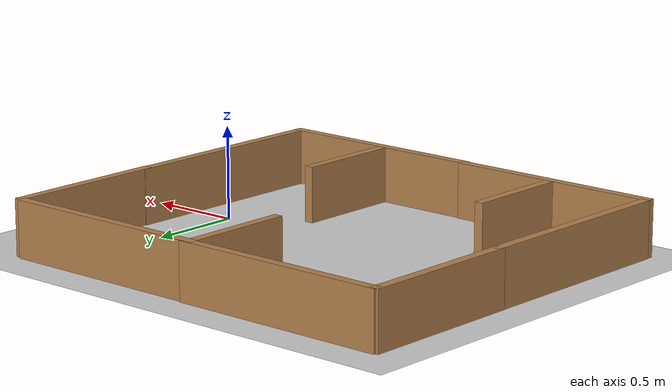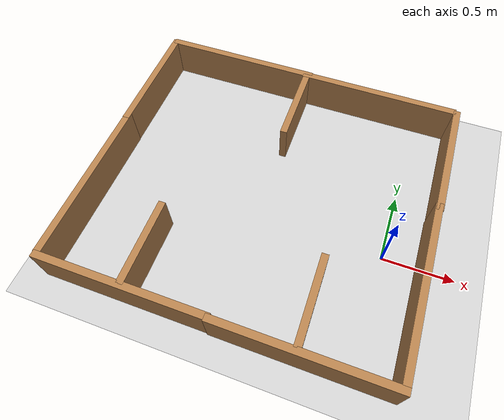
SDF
<sdf version="1.7">
 <world name="default">
  <light name="sun" type="directional">
   <pose>0 0 10 0 -0 0</pose>
   <diffuse>0.8 0.8 0.8 1</diffuse>
   <specular>0.2 0.2 0.2 1</specular>
   <attenuation>
    <range>1000</range>
    <constant>0.9</constant>
    <linear>0.01</linear>
    <quadratic>0.001</quadratic>
   </attenuation>
   <direction>-0.5 0.1 -0.9</direction>
   <spot><inner_angle>0</inner_angle><outer_angle>0</outer_angle><falloff>0</falloff></spot>
  </light>
  <model name="ground_plane">
   <static>1</static>
   <link name="link">
    <collision name="collision">
     <geometry><plane><normal>0 0 1</normal><size>100 100</size></plane></geometry>
     <surface>
      <contact><collide_bitmask>65535</collide_bitmask></contact>
      <friction><ode><mu>100</mu><mu2>50</mu2></ode></friction>
     </surface>
    </collision>
    <visual name="visual">
     <cast_shadows>0</cast_shadows>
     <geometry><plane><normal>0 0 1</normal><size>100 100</size></plane></geometry>
     <material>
      <script><uri>file://media/materials/scripts/gazebo.material</uri><name>Gazebo/Grey</name></script>
     </material>
    </visual>
   </link>
  </model>
  <gravity>0 0 -9.8</gravity>
  <magnetic_field>6e-06 2.3e-05 -4.2e-05</magnetic_field>
  <atmosphere type="adiabatic"/>
  <physics type="ode">
   <max_step_size>0.001</max_step_size>
   <real_time_factor>1</real_time_factor>
   <real_time_update_rate>1000</real_time_update_rate>
  </physics>
  <scene><ambient>0.4 0.4 0.4 1</ambient><background>0.7 0.7 0.7 1</background><shadows>1</shadows></scene>
  <spherical_coordinates>
   <surface_model>EARTH_WGS84</surface_model>
   <latitude_deg>0</latitude_deg>
   <longitude_deg>0</longitude_deg>
   <elevation>0</elevation>
   <heading_deg>0</heading_deg>
  </spherical_coordinates>
  <model name="demo_world">
   <model name="wall120cm">
    <pose>0.593911 -0.999291 0 0 -0 0</pose>
    <link name="Wall_11">
     <collision name="Wall_11_Collision">
      <geometry><box><size>1.2 0.05 0.3</size></box></geometry>
      <pose>0 0 0.15 0 -0 0</pose>
     </collision>
     <visual name="Wall_11_Visual">
      <pose>0 0 0.15 0 -0 0</pose>
      <geometry><box><size>1.2 0.05 0.3</size></box></geometry>
      <material>
       <script><uri>file://media/materials/scripts/gazebo.material</uri><name>Gazebo/Wood</name></script>
       <ambient>1 1 1 1</ambient>
      </material>
      <meta><layer>0</layer></meta>
     </visual>
    </link>
    <static>1</static>
   </model>
   <model name="wall120cm_0">
    <pose>-0.575644 -0.992298 0 0 -0 0</pose>
    <link name="Wall_11">
     <collision name="Wall_11_Collision">
      <geometry><box><size>1.2 0.05 0.3</size></box></geometry>
      <pose>0 0 0.15 0 -0 0</pose>
     </collision>
     <visual name="Wall_11_Visual">
      <pose>0 0 0.15 0 -0 0</pose>
      <geometry><box><size>1.2 0.05 0.3</size></box></geometry>
      <material>
       <script><uri>file://media/materials/scripts/gazebo.material</uri><name>Gazebo/Wood</name></script>
       <ambient>1 1 1 1</ambient>
      </material>
      <meta><layer>0</layer></meta>
     </visual>
    </link>
    <static>1</static>
   </model>
   <model name="wall120cm_1">
    <pose>0.55815 1.05823 0 0 -0 0</pose>
    <link name="Wall_11">
     <collision name="Wall_11_Collision">
      <geometry><box><size>1.2 0.05 0.3</size></box></geometry>
      <pose>0 0 0.15 0 -0 0</pose>
     </collision>
     <visual name="Wall_11_Visual">
      <pose>0 0 0.15 0 -0 0</pose>
      <geometry><box><size>1.2 0.05 0.3</size></box></geometry>
      <material>
       <script><uri>file://media/materials/scripts/gazebo.material</uri><name>Gazebo/Wood</name></script>
       <ambient>1 1 1 1</ambient>
      </material>
      <meta><layer>0</layer></meta>
     </visual>
    </link>
    <static>1</static>
   </model>
   <model name="wall120cm_2">
    <pose>-0.572781 1.06556 0 0 -0 0</pose>
    <link name="Wall_11">
     <collision name="Wall_11_Collision">
      <geometry><box><size>1.2 0.05 0.3</size></box></geometry>
      <pose>0 0 0.15 0 -0 0</pose>
     </collision>
     <visual name="Wall_11_Visual">
      <pose>0 0 0.15 0 -0 0</pose>
      <geometry><box><size>1.2 0.05 0.3</size></box></geometry>
      <material>
       <script><uri>file://media/materials/scripts/gazebo.material</uri><name>Gazebo/Wood</name></script>
       <ambient>1 1 1 1</ambient>
      </material>
      <meta><layer>0</layer></meta>
     </visual>
    </link>
    <static>1</static>
   </model>
   <model name="wall120cm_3">
    <pose>-1.15465 -0.379228 0 0 0 -1.5696</pose>
    <link name="Wall_11">
     <collision name="Wall_11_Collision">
      <geometry><box><size>1.2 0.05 0.3</size></box></geometry>
      <pose>0 0 0.15 0 -0 0</pose>
     </collision>
     <visual name="Wall_11_Visual">
      <pose>0 0 0.15 0 -0 0</pose>
      <geometry><box><size>1.2 0.05 0.3</size></box></geometry>
      <material>
       <script><uri>file://media/materials/scripts/gazebo.material</uri><name>Gazebo/Wood</name></script>
       <ambient>1 1 1 1</ambient>
      </material>
      <meta><layer>0</layer></meta>
     </visual>
    </link>
    <static>1</static>
   </model>
   <model name="wall120cm_4">
    <pose>1.16731 -0.376401 0 0 0 -1.56859</pose>
    <link name="Wall_11">
     <collision name="Wall_11_Collision">
      <geometry><box><size>1.2 0.05 0.3</size></box></geometry>
      <pose>0 0 0.15 0 -0 0</pose>
     </collision>
     <visual name="Wall_11_Visual">
      <pose>0 0 0.15 0 -0 0</pose>
      <geometry><box><size>1.2 0.05 0.3</size></box></geometry>
      <material>
       <script><uri>file://media/materials/scripts/gazebo.material</uri><name>Gazebo/Wood</name></script>
       <ambient>1 1 1 1</ambient>
      </material>
      <meta><layer>0</layer></meta>
     </visual>
    </link>
    <static>1</static>
   </model>
   <model name="wall60cm_1">
    <pose>-0.570037 -0.688227 0 0 0 -1.56024</pose>
    <link name="Wall_4">
     <collision name="Wall_4_Collision">
      <geometry><box><size>0.6 0.05 0.3</size></box></geometry>
      <pose>0 0 0.15 0 -0 0</pose>
     </collision>
     <visual name="Wall_4_Visual">
      <pose>0 0 0.15 0 -0 0</pose>
      <geometry><box><size>0.6 0.05 0.3</size></box></geometry>
      <material>
       <script><uri>file://media/materials/scripts/gazebo.material</uri><name>Gazebo/Wood</name></script>
       <ambient>1 1 1 1</ambient>
      </material>
      <meta><layer>0</layer></meta>
     </visual>
    </link>
    <static>1</static>
   </model>
   <model name="wall60cm_1_clone">
    <pose>0.552915 -0.683128 0 0 0 -1.56024</pose>
    <link name="Wall_4">
     <collision name="Wall_4_Collision">
      <geometry><box><size>0.6 0.05 0.3</size></box></geometry>
      <pose>0 0 0.15 0 -0 0</pose>
     </collision>
     <visual name="Wall_4_Visual">
      <pose>0 0 0.15 0 -0 0</pose>
      <geometry><box><size>0.6 0.05 0.3</size></box></geometry>
      <material>
       <script><uri>file://media/materials/scripts/gazebo.material</uri><name>Gazebo/Wood</name></script>
       <ambient>1 1 1 1</ambient>
      </material>
      <meta><layer>0</layer></meta>
     </visual>
    </link>
    <static>1</static>
   </model>
   <model name="wall60cm_1_clone_0">
    <pose>-0.008217 0.744159 0 0 0 -1.56024</pose>
    <link name="Wall_4">
     <collision name="Wall_4_Collision">
      <geometry><box><size>0.6 0.05 0.3</size></box></geometry>
      <pose>0 0 0.15 0 -0 0</pose>
     </collision>
     <visual name="Wall_4_Visual">
      <pose>0 0 0.15 0 -0 0</pose>
      <geometry><box><size>0.6 0.05 0.3</size></box></geometry>
      <material>
       <script><uri>file://media/materials/scripts/gazebo.material</uri><name>Gazebo/Wood</name></script>
       <ambient>1 1 1 1</ambient>
      </material>
      <meta><layer>0</layer></meta>
     </visual>
    </link>
    <static>1</static>
   </model>
   <model name="wall90cm">
    <pose>1.169 0.620401 0 0 -0 1.57705</pose>
    <link name="Wall_6">
     <collision name="Wall_6_Collision">
      <geometry><box><size>0.9 0.05 0.3</size></box></geometry>
      <pose>0 0 0.15 0 -0 0</pose>
     </collision>
     <visual name="Wall_6_Visual">
      <pose>0 0 0.15 0 -0 0</pose>
      <geometry><box><size>0.9 0.05 0.3</size></box></geometry>
      <material>
       <script><uri>file://media/materials/scripts/gazebo.material</uri><name>Gazebo/Wood</name></script>
       <ambient>1 1 1 1</ambient>
      </material>
      <meta><layer>0</layer></meta>
     </visual>
    </link>
    <static>1</static>
   </model>
   <model name="wall90cm_0">
    <pose>-1.15996 0.630219 0 0 0 -1.5662</pose>
    <link name="Wall_6">
     <collision name="Wall_6_Collision">
      <geometry><box><size>0.9 0.05 0.3</size></box></geometry>
      <pose>0 0 0.15 0 -0 0</pose>
     </collision>
     <visual name="Wall_6_Visual">
      <pose>0 0 0.15 0 -0 0</pose>
      <geometry><box><size>0.9 0.05 0.3</size></box></geometry>
      <material>
       <script><uri>file://media/materials/scripts/gazebo.material</uri><name>Gazebo/Wood</name></script>
       <ambient>1 1 1 1</ambient>
      </material>
      <meta><layer>0</layer></meta>
     </visual>
    </link>
    <static>1</static>
   </model>
   <static>0</static>
   <pose>-0.909577 0.153219 0 0 -0 0</pose>
  </model>
 </world>
</sdf>
